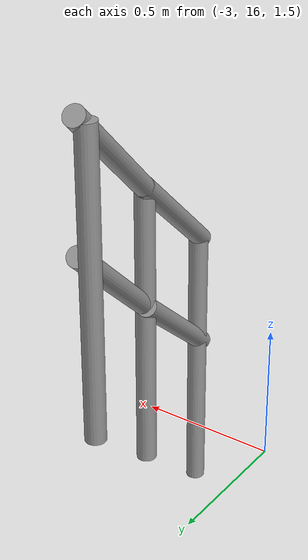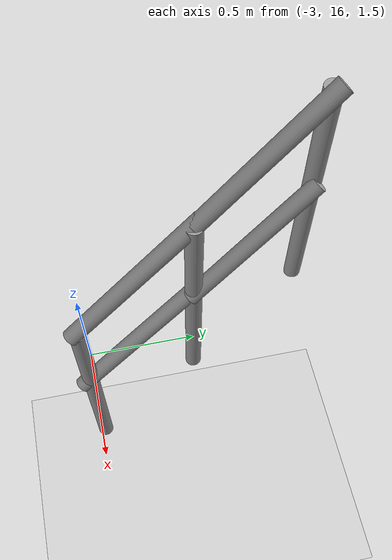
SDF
<sdf version="1.6">
 <world name="default">
  <model name="ground_plane">
   <static>1</static>
   <link name="link">
    <collision name="collision">
     <geometry><plane><normal>0 0 1</normal><size>100 100</size></plane></geometry>
     <surface><friction><ode><mu>100</mu><mu2>50</mu2></ode></friction></surface>
    </collision>
    <visual name="visual">
     <cast_shadows>0</cast_shadows>
     <geometry><plane><normal>0 0 1</normal><size>100 100</size></plane></geometry>
     <material>
      <script><uri>file://media/materials/scripts/gazebo.material</uri><name>Gazebo/Grey</name></script>
     </material>
    </visual>
   </link>
  </model>
  <model name="indoor_fence_stairs">
   <link name="link_clone">
    <inertial>
     <mass>1</mass>
     <inertia><ixx>0.145833</ixx><ixy>0</ixy><ixz>0</ixz><iyy>0.145833</iyy><iyz>0</iyz><izz>0.125</izz></inertia>
    </inertial>
    <pose>-0.043864 -1.48739 0 0 -0 0</pose>
    <visual name="visual">
     <geometry><cylinder><radius>0.0332942</radius><length>1</length></cylinder></geometry>
     <material>
      <script><name>Gazebo/Grey</name><uri>file://media/materials/scripts/gazebo.material</uri></script>
      <shader type="pixel"/>
     </material>
    </visual>
    <collision name="collision">
     <geometry><cylinder><radius>0.033294</radius><length>1</length></cylinder></geometry>
     <surface>
      <friction>
       <ode><mu>1</mu><mu2>1</mu2><fdir1>0 0 0</fdir1><slip1>0</slip1><slip2>0</slip2></ode>
       <torsional>
        <coefficient>1</coefficient>
        <patch_radius>0</patch_radius>
        <surface_radius>0</surface_radius>
        <use_patch_radius>1</use_patch_radius>
        <ode><slip>0</slip></ode>
       </torsional>
      </friction>
      <bounce><restitution_coefficient>0</restitution_coefficient><threshold>1e+06</threshold></bounce>
      <contact>
       <collide_without_contact>0</collide_without_contact>
       <collide_without_contact_bitmask>1</collide_without_contact_bitmask>
       <collide_bitmask>1</collide_bitmask>
       <ode>
        <soft_cfm>0</soft_cfm>
        <soft_erp>0.2</soft_erp>
        <kp>1e+13</kp>
        <kd>1</kd>
        <max_vel>0.01</max_vel>
        <min_depth>0</min_depth>
       </ode>
       <bullet>
        <split_impulse>1</split_impulse>
        <split_impulse_penetration_threshold>-0.01</split_impulse_penetration_threshold>
        <soft_cfm>0</soft_cfm>
        <soft_erp>0.2</soft_erp>
        <kp>1e+13</kp>
        <kd>1</kd>
       </bullet>
      </contact>
     </surface>
    </collision>
   </link>
   <link name="link_clone_0">
    <inertial>
     <mass>0.666438</mass>
     <inertia>
      <ixx>0.024851</ixx>
      <ixy>0</ixy>
      <ixz>0</ixz>
      <iyy>0.024851</iyy>
      <iyz>0</iyz>
      <izz>0.00036937</izz>
     </inertia>
    </inertial>
    <pose>0.135441 -2.16001 -0.086859 -0.891836 0.043149 0.26656</pose>
    <visual name="visual">
     <geometry><cylinder><radius>0.0332942</radius><length>0.666442</length></cylinder></geometry>
     <material>
      <script><name>Gazebo/Grey</name><uri>file://media/materials/scripts/gazebo.material</uri></script>
      <shader type="pixel"/>
     </material>
    </visual>
    <collision name="collision">
     <geometry><cylinder><radius>0.033294</radius><length>0.666442</length></cylinder></geometry>
     <surface>
      <friction>
       <ode><mu>1</mu><mu2>1</mu2><fdir1>0 0 0</fdir1><slip1>0</slip1><slip2>0</slip2></ode>
       <torsional>
        <coefficient>1</coefficient>
        <patch_radius>0</patch_radius>
        <surface_radius>0</surface_radius>
        <use_patch_radius>1</use_patch_radius>
        <ode><slip>0</slip></ode>
       </torsional>
      </friction>
      <bounce><restitution_coefficient>0</restitution_coefficient><threshold>1e+06</threshold></bounce>
      <contact>
       <collide_without_contact>0</collide_without_contact>
       <collide_without_contact_bitmask>1</collide_without_contact_bitmask>
       <collide_bitmask>1</collide_bitmask>
       <ode>
        <soft_cfm>0</soft_cfm>
        <soft_erp>0.2</soft_erp>
        <kp>1e+13</kp>
        <kd>1</kd>
        <max_vel>0.01</max_vel>
        <min_depth>0</min_depth>
       </ode>
       <bullet>
        <split_impulse>1</split_impulse>
        <split_impulse_penetration_threshold>-0.01</split_impulse_penetration_threshold>
        <soft_cfm>0</soft_cfm>
        <soft_erp>0.2</soft_erp>
        <kp>1e+13</kp>
        <kd>1</kd>
       </bullet>
      </contact>
     </surface>
    </collision>
   </link>
   <link name="link_clone_0_clone">
    <inertial>
     <mass>0.637885</mass>
     <inertia>
      <ixx>0.0218051</ixx>
      <ixy>0</ixy>
      <ixz>0</ixz>
      <iyy>0.0218051</iyy>
      <iyz>0</iyz>
      <izz>0.000353545</izz>
     </inertia>
    </inertial>
    <pose>0.02871 -1.69714 0.307683 -0.861097 0.043149 0.26656</pose>
    <visual name="visual">
     <geometry><cylinder><radius>0.0332942</radius><length>0.637869</length></cylinder></geometry>
     <material>
      <script><name>Gazebo/Grey</name><uri>file://media/materials/scripts/gazebo.material</uri></script>
      <shader type="pixel"/>
     </material>
    </visual>
    <collision name="collision">
     <geometry><cylinder><radius>0.033294</radius><length>0.637869</length></cylinder></geometry>
     <surface>
      <friction>
       <ode><mu>1</mu><mu2>1</mu2><fdir1>0 0 0</fdir1><slip1>0</slip1><slip2>0</slip2></ode>
       <torsional>
        <coefficient>1</coefficient>
        <patch_radius>0</patch_radius>
        <surface_radius>0</surface_radius>
        <use_patch_radius>1</use_patch_radius>
        <ode><slip>0</slip></ode>
       </torsional>
      </friction>
      <bounce><restitution_coefficient>0</restitution_coefficient><threshold>1e+06</threshold></bounce>
      <contact>
       <collide_without_contact>0</collide_without_contact>
       <collide_without_contact_bitmask>1</collide_without_contact_bitmask>
       <collide_bitmask>1</collide_bitmask>
       <ode>
        <soft_cfm>0</soft_cfm>
        <soft_erp>0.2</soft_erp>
        <kp>1e+13</kp>
        <kd>1</kd>
        <max_vel>0.01</max_vel>
        <min_depth>0</min_depth>
       </ode>
       <bullet>
        <split_impulse>1</split_impulse>
        <split_impulse_penetration_threshold>-0.01</split_impulse_penetration_threshold>
        <soft_cfm>0</soft_cfm>
        <soft_erp>0.2</soft_erp>
        <kp>1e+13</kp>
        <kd>1</kd>
       </bullet>
      </contact>
     </surface>
    </collision>
   </link>
   <link name="link_clone_0_clone_0">
    <inertial>
     <mass>0.666438</mass>
     <inertia>
      <ixx>0.024851</ixx>
      <ixy>0</ixy>
      <ixz>0</ixz>
      <iyy>0.024851</iyy>
      <iyz>0</iyz>
      <izz>0.00036937</izz>
     </inertia>
    </inertial>
    <pose>0.137579 -2.17188 -0.506735 -0.891836 0.043149 0.26656</pose>
    <visual name="visual">
     <geometry><cylinder><radius>0.0332942</radius><length>0.666442</length></cylinder></geometry>
     <material>
      <script><name>Gazebo/Grey</name><uri>file://media/materials/scripts/gazebo.material</uri></script>
      <shader type="pixel"/>
     </material>
    </visual>
    <collision name="collision">
     <geometry><cylinder><radius>0.033294</radius><length>0.666442</length></cylinder></geometry>
     <surface>
      <friction>
       <ode><mu>1</mu><mu2>1</mu2><fdir1>0 0 0</fdir1><slip1>0</slip1><slip2>0</slip2></ode>
       <torsional>
        <coefficient>1</coefficient>
        <patch_radius>0</patch_radius>
        <surface_radius>0</surface_radius>
        <use_patch_radius>1</use_patch_radius>
        <ode><slip>0</slip></ode>
       </torsional>
      </friction>
      <bounce><restitution_coefficient>0</restitution_coefficient><threshold>1e+06</threshold></bounce>
      <contact>
       <collide_without_contact>0</collide_without_contact>
       <collide_without_contact_bitmask>1</collide_without_contact_bitmask>
       <collide_bitmask>1</collide_bitmask>
       <ode>
        <soft_cfm>0</soft_cfm>
        <soft_erp>0.2</soft_erp>
        <kp>1e+13</kp>
        <kd>1</kd>
        <max_vel>0.01</max_vel>
        <min_depth>0</min_depth>
       </ode>
       <bullet>
        <split_impulse>1</split_impulse>
        <split_impulse_penetration_threshold>-0.01</split_impulse_penetration_threshold>
        <soft_cfm>0</soft_cfm>
        <soft_erp>0.2</soft_erp>
        <kp>1e+13</kp>
        <kd>1</kd>
       </bullet>
      </contact>
     </surface>
    </collision>
   </link>
   <link name="link_clone_0_clone_clone">
    <inertial>
     <mass>0.637885</mass>
     <inertia>
      <ixx>0.0218051</ixx>
      <ixy>0</ixy>
      <ixz>0</ixz>
      <iyy>0.0218051</iyy>
      <iyz>0</iyz>
      <izz>0.000353545</izz>
     </inertia>
    </inertial>
    <pose>0.047559 -1.71301 -0.109673 -0.861097 0.043149 0.26656</pose>
    <visual name="visual">
     <geometry><cylinder><radius>0.0332942</radius><length>0.637869</length></cylinder></geometry>
     <material>
      <script><name>Gazebo/Grey</name><uri>file://media/materials/scripts/gazebo.material</uri></script>
      <shader type="pixel"/>
     </material>
    </visual>
    <collision name="collision">
     <geometry><cylinder><radius>0.033294</radius><length>0.637869</length></cylinder></geometry>
     <surface>
      <friction>
       <ode><mu>1</mu><mu2>1</mu2><fdir1>0 0 0</fdir1><slip1>0</slip1><slip2>0</slip2></ode>
       <torsional>
        <coefficient>1</coefficient>
        <patch_radius>0</patch_radius>
        <surface_radius>0</surface_radius>
        <use_patch_radius>1</use_patch_radius>
        <ode><slip>0</slip></ode>
       </torsional>
      </friction>
      <bounce><restitution_coefficient>0</restitution_coefficient><threshold>1e+06</threshold></bounce>
      <contact>
       <collide_without_contact>0</collide_without_contact>
       <collide_without_contact_bitmask>1</collide_without_contact_bitmask>
       <collide_bitmask>1</collide_bitmask>
       <ode>
        <soft_cfm>0</soft_cfm>
        <soft_erp>0.2</soft_erp>
        <kp>1e+13</kp>
        <kd>1</kd>
        <max_vel>0.01</max_vel>
        <min_depth>0</min_depth>
       </ode>
       <bullet>
        <split_impulse>1</split_impulse>
        <split_impulse_penetration_threshold>-0.01</split_impulse_penetration_threshold>
        <soft_cfm>0</soft_cfm>
        <soft_erp>0.2</soft_erp>
        <kp>1e+13</kp>
        <kd>1</kd>
       </bullet>
      </contact>
     </surface>
    </collision>
   </link>
   <link name="link_clone_1">
    <inertial>
     <mass>1</mass>
     <inertia><ixx>0.145833</ixx><ixy>0</ixy><ixz>0</ixz><iyy>0.145833</iyy><iyz>0</iyz><izz>0.125</izz></inertia>
    </inertial>
    <pose>0.092184 -1.93374 -0.389279 0 -0 0</pose>
    <visual name="visual">
     <geometry><cylinder><radius>0.0332942</radius><length>1</length></cylinder></geometry>
     <material>
      <script><name>Gazebo/Grey</name><uri>file://media/materials/scripts/gazebo.material</uri></script>
      <shader type="pixel"/>
     </material>
    </visual>
    <collision name="collision">
     <geometry><cylinder><radius>0.033294</radius><length>1</length></cylinder></geometry>
     <surface>
      <friction>
       <ode><mu>1</mu><mu2>1</mu2><fdir1>0 0 0</fdir1><slip1>0</slip1><slip2>0</slip2></ode>
       <torsional>
        <coefficient>1</coefficient>
        <patch_radius>0</patch_radius>
        <surface_radius>0</surface_radius>
        <use_patch_radius>1</use_patch_radius>
        <ode><slip>0</slip></ode>
       </torsional>
      </friction>
      <bounce><restitution_coefficient>0</restitution_coefficient><threshold>1e+06</threshold></bounce>
      <contact>
       <collide_without_contact>0</collide_without_contact>
       <collide_without_contact_bitmask>1</collide_without_contact_bitmask>
       <collide_bitmask>1</collide_bitmask>
       <ode>
        <soft_cfm>0</soft_cfm>
        <soft_erp>0.2</soft_erp>
        <kp>1e+13</kp>
        <kd>1</kd>
        <max_vel>0.01</max_vel>
        <min_depth>0</min_depth>
       </ode>
       <bullet>
        <split_impulse>1</split_impulse>
        <split_impulse_penetration_threshold>-0.01</split_impulse_penetration_threshold>
        <soft_cfm>0</soft_cfm>
        <soft_erp>0.2</soft_erp>
        <kp>1e+13</kp>
        <kd>1</kd>
       </bullet>
      </contact>
     </surface>
    </collision>
   </link>
   <link name="link_clone_1_clone">
    <inertial>
     <mass>1</mass>
     <inertia><ixx>0.145833</ixx><ixy>0</ixy><ixz>0</ixz><iyy>0.145833</iyy><iyz>0</iyz><izz>0.125</izz></inertia>
    </inertial>
    <pose>0.189555 -2.38596 -0.787618 0 -0 0</pose>
    <visual name="visual">
     <geometry><cylinder><radius>0.0332942</radius><length>1</length></cylinder></geometry>
     <material>
      <script><name>Gazebo/Grey</name><uri>file://media/materials/scripts/gazebo.material</uri></script>
      <shader type="pixel"/>
     </material>
    </visual>
    <collision name="collision">
     <geometry><cylinder><radius>0.033294</radius><length>1</length></cylinder></geometry>
     <surface>
      <friction>
       <ode><mu>1</mu><mu2>1</mu2><fdir1>0 0 0</fdir1><slip1>0</slip1><slip2>0</slip2></ode>
       <torsional>
        <coefficient>1</coefficient>
        <patch_radius>0</patch_radius>
        <surface_radius>0</surface_radius>
        <use_patch_radius>1</use_patch_radius>
        <ode><slip>0</slip></ode>
       </torsional>
      </friction>
      <bounce><restitution_coefficient>0</restitution_coefficient><threshold>1e+06</threshold></bounce>
      <contact>
       <collide_without_contact>0</collide_without_contact>
       <collide_without_contact_bitmask>1</collide_without_contact_bitmask>
       <collide_bitmask>1</collide_bitmask>
       <ode>
        <soft_cfm>0</soft_cfm>
        <soft_erp>0.2</soft_erp>
        <kp>1e+13</kp>
        <kd>1</kd>
        <max_vel>0.01</max_vel>
        <min_depth>0</min_depth>
       </ode>
       <bullet>
        <split_impulse>1</split_impulse>
        <split_impulse_penetration_threshold>-0.01</split_impulse_penetration_threshold>
        <soft_cfm>0</soft_cfm>
        <soft_erp>0.2</soft_erp>
        <kp>1e+13</kp>
        <kd>1</kd>
       </bullet>
      </contact>
     </surface>
    </collision>
   </link>
   <static>1</static>
   <pose>-2.89374 18.3919 2.56606 0 -0 0</pose>
  </model>
 </world>
</sdf>
